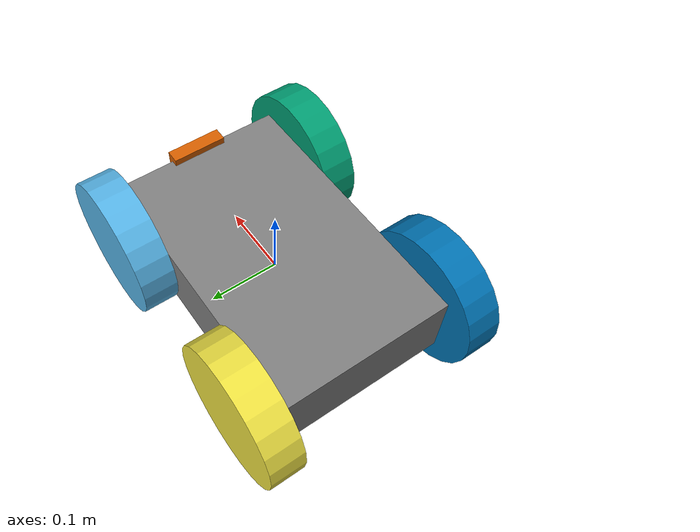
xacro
<?xml version="1.0"?>
<robot name="simple_bot" xmlns:xacro="http://www.ros.org/wiki/xacro">

  <!-- ================= BASE LINK ================= -->
  <link name="base_link">
    <visual>
      <geometry><box size="0.4 0.25 0.1"/></geometry>
      <material name="gray"><color rgba="0.5 0.5 0.5 1.0"/></material>
    </visual>
    <collision>
      <geometry><box size="0.4 0.25 0.1"/></geometry>
    </collision>
    <inertial>
      <mass value="5.0"/>
      <inertia ixx="0.03" ixy="0" ixz="0" iyy="0.07" iyz="0" izz="0.08"/>
    </inertial>
  </link>

  <!-- ================= WHEEL MACRO ================= -->
  <xacro:macro name="wheel" params="prefix x_reflect y_reflect">
    <link name="${prefix}_Wheel">
      <visual>
        <geometry><cylinder radius="0.1" length="0.05"/></geometry>
      </visual>
      <collision>
        <geometry><sphere radius="0.1"/></geometry>
      </collision>
      <inertial>
        <mass value="1.0"/>
        <inertia ixx="0.003" ixy="0" ixz="0" iyy="0.003" iyz="0" izz="0.005"/>
      </inertial>
    </link>

    <joint name="${prefix}_Joint" type="continuous">
      <parent link="base_link"/>
      <child link="${prefix}_Wheel"/>
      <origin xyz="${x_reflect * 0.15} ${y_reflect * 0.15} 0" rpy="-1.5708 0 0"/>
      <axis xyz="0 0 1"/>
    </joint>

    <gazebo reference="${prefix}_Wheel">
      <mu1>1.0</mu1>
      <mu2>0.2</mu2>
      <!-- fdir1 locks the high friction to the wheel's local X axis (forward) -->
      <fdir1>1 0 0</fdir1>
      <!-- Increased kp makes the wheels solid so the chassis stops sagging and scraping -->
      <kp>10000000.0</kp>
      <kd>1.0</kd>
      <minDepth>0.001</minDepth>
    </gazebo>
  </xacro:macro>

  <xacro:wheel prefix="FL" x_reflect="1"  y_reflect="1" />
  <xacro:wheel prefix="FR" x_reflect="1"  y_reflect="-1" />
  <xacro:wheel prefix="RL" x_reflect="-1" y_reflect="1" />
  <xacro:wheel prefix="RR" x_reflect="-1" y_reflect="-1" />

  <!-- ================= CAMERA ================= -->
  <link name="DepthCamVirtual">
    <visual><geometry><box size="0.02 0.08 0.02"/></geometry></visual>
  </link>
  <joint name="Cam_Joint" type="fixed">
    <parent link="base_link"/>
    <child link="DepthCamVirtual"/>
    <origin xyz="0.2 0 0.05" rpy="0 0 0"/>
  </joint>

  <link name="DepthCamOptical"/>
  <joint name="Cam_Optical_Joint" type="fixed">
    <parent link="DepthCamVirtual"/>
    <child link="DepthCamOptical"/>
    <origin xyz="0 0 0" rpy="-1.5708 0 -1.5708"/>
  </joint>

  <!-- ================= GAZEBO SENSORS & CONTROL ================= -->
  <gazebo>
    <plugin filename="gz_ros2_control-system" name="gz_ros2_control::GazeboSimROS2ControlPlugin">
      <parameters>$(find igv_assembly)/config/simple_controllers.yaml</parameters>
    </plugin>
    <plugin filename="gz-sim-sensors-system" name="gz::sim::systems::Sensors">
      <render_engine>ogre2</render_engine>
    </plugin>
  </gazebo>

  <gazebo reference="DepthCamVirtual">
    <sensor type='rgbd_camera' name="Depth_Camera">
      <always_on>true</always_on>
      <update_rate>30.0</update_rate>
      <topic>depth_camera</topic>
      <camera name="depth_camera">
        <optical_frame_id>DepthCamOptical</optical_frame_id>
        <horizontal_fov>1.047</horizontal_fov>
        <image><width>640</width><height>480</height><format>R8G8B8</format></image>
        <clip><near>0.1</near><far>10.0</far></clip>
      </camera>
    </sensor>
  </gazebo>

  <!-- ================= ROS 2 CONTROL HARDWARE ================= -->
  <ros2_control name="IgnitionSystem" type="system">
    <hardware>
      <plugin>gz_ros2_control/GazeboSimSystem</plugin>
    </hardware>
    <joint name="FL_Joint">
      <command_interface name="velocity"/>
      <state_interface name="position"/><state_interface name="velocity"/>
    </joint>
    <joint name="FR_Joint">
      <command_interface name="velocity"/>
      <state_interface name="position"/><state_interface name="velocity"/>
    </joint>
    <joint name="RL_Joint">
      <command_interface name="velocity"/>
      <state_interface name="position"/><state_interface name="velocity"/>
    </joint>
    <joint name="RR_Joint">
      <command_interface name="velocity"/>
      <state_interface name="position"/><state_interface name="velocity"/>
    </joint>
  </ros2_control>

</robot>
